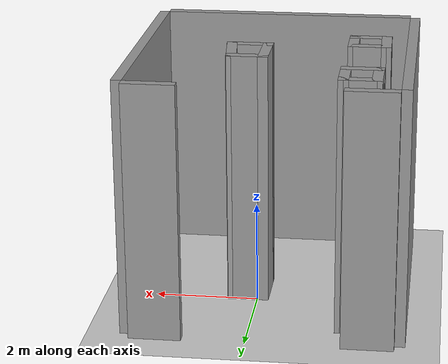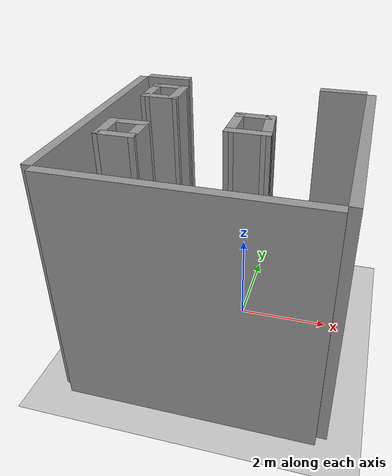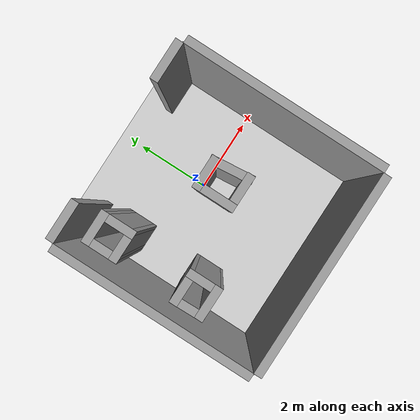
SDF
<sdf version="1.4">
 <world name="default">
  <light name="sun" type="directional">
   <pose>0 0 10 0 -0 0</pose>
   <diffuse>0.8 0.8 0.8 1</diffuse>
   <specular>0.1 0.1 0.1 1</specular>
   <attenuation>
    <range>1000</range>
    <constant>0.9</constant>
    <linear>0.01</linear>
    <quadratic>0.001</quadratic>
   </attenuation>
   <direction>-0.5 0.5 -1</direction>
  </light>
  <model name="my_model_2">
   <pose>2.27296 2.81261 0 0 -0 0</pose>
   <link name="Wall_0">
    <collision name="Wall_0_Collision">
     <geometry><box><size>5 0.2 5</size></box></geometry>
     <pose>0 0 2.5 0 -0 0</pose>
    </collision>
    <visual name="Wall_0_Visual">
     <pose>0 0 2.5 0 -0 0</pose>
     <geometry><box><size>5 0.2 5</size></box></geometry>
     <material>
      <script><uri>file://media/materials/scripts/gazebo.material</uri><name>Gazebo/Grey</name></script>
     </material>
    </visual>
    <velocity_decay><linear>0</linear><angular>0</angular></velocity_decay>
    <pose>-5.165 -3.49 0 0 0 -1.5708</pose>
   </link>
   <link name="Wall_11">
    <collision name="Wall_11_Collision">
     <geometry><box><size>1 0.2 5</size></box></geometry>
     <pose>0 0 2.5 0 -0 0</pose>
    </collision>
    <visual name="Wall_11_Visual">
     <pose>0 0 2.5 0 -0 0</pose>
     <geometry><box><size>1 0.2 5</size></box></geometry>
     <material>
      <script><uri>file://media/materials/scripts/gazebo.material</uri><name>Gazebo/Grey</name></script>
     </material>
    </visual>
    <velocity_decay><linear>0</linear><angular>0</angular></velocity_decay>
    <pose>-4.563 -0.894 0 0 -0 3.14159</pose>
   </link>
   <link name="Wall_13">
    <collision name="Wall_13_Collision">
     <geometry><box><size>1 0.2 5</size></box></geometry>
     <pose>0 0 2.5 0 -0 0</pose>
    </collision>
    <visual name="Wall_13_Visual">
     <pose>0 0 2.5 0 -0 0</pose>
     <geometry><box><size>1 0.2 5</size></box></geometry>
     <material>
      <script><uri>file://media/materials/scripts/gazebo.material</uri><name>Gazebo/Grey</name></script>
     </material>
    </visual>
    <velocity_decay><linear>0</linear><angular>0</angular></velocity_decay>
    <pose>-0.57 -0.903 0 0 -0 3.14159</pose>
   </link>
   <link name="Wall_15">
    <collision name="Wall_15_Collision">
     <geometry><box><size>0.824035 0.2 5</size></box></geometry>
     <pose>0 0 2.5 0 -0 0</pose>
    </collision>
    <visual name="Wall_15_Visual">
     <pose>0 0 2.5 0 -0 0</pose>
     <geometry><box><size>0.824035 0.2 5</size></box></geometry>
     <material>
      <script><uri>file://media/materials/scripts/gazebo.material</uri><name>Gazebo/Grey</name></script>
     </material>
    </visual>
    <velocity_decay><linear>0</linear><angular>0</angular></velocity_decay>
    <pose>-4.34702 -4.40304 0 0 -0 0.000139</pose>
   </link>
   <link name="Wall_16">
    <collision name="Wall_16_Collision">
     <geometry><box><size>0.824 0.2 5</size></box></geometry>
     <pose>0 0 2.5 0 -0 0</pose>
    </collision>
    <visual name="Wall_16_Visual">
     <pose>0 0 2.5 0 -0 0</pose>
     <geometry><box><size>0.824 0.2 5</size></box></geometry>
     <material>
      <script><uri>file://media/materials/scripts/gazebo.material</uri><name>Gazebo/Grey</name></script>
     </material>
    </visual>
    <velocity_decay><linear>0</linear><angular>0</angular></velocity_decay>
    <pose>-4.035 -4.091 0 0 -0 1.5708</pose>
   </link>
   <link name="Wall_17">
    <collision name="Wall_17_Collision">
     <geometry><box><size>0.838903 0.2 5</size></box></geometry>
     <pose>0 0 2.5 0 -0 0</pose>
    </collision>
    <visual name="Wall_17_Visual">
     <pose>0 0 2.5 0 -0 0</pose>
     <geometry><box><size>0.838903 0.2 5</size></box></geometry>
     <material>
      <script><uri>file://media/materials/scripts/gazebo.material</uri><name>Gazebo/Grey</name></script>
     </material>
    </visual>
    <velocity_decay><linear>0</linear><angular>0</angular></velocity_decay>
    <pose>-4.35445 -3.77881 0 0 -0 3.141</pose>
   </link>
   <link name="Wall_18">
    <collision name="Wall_18_Collision">
     <geometry><box><size>0.824639 0.2 5</size></box></geometry>
     <pose>0 0 2.5 0 -0 0</pose>
    </collision>
    <visual name="Wall_18_Visual">
     <pose>0 0 2.5 0 -0 0</pose>
     <geometry><box><size>0.824639 0.2 5</size></box></geometry>
     <material>
      <script><uri>file://media/materials/scripts/gazebo.material</uri><name>Gazebo/Grey</name></script>
     </material>
    </visual>
    <velocity_decay><linear>0</linear><angular>0</angular></velocity_decay>
    <pose>-4.66647 -4.09086 0 0 0 -1.54699</pose>
   </link>
   <link name="Wall_20">
    <collision name="Wall_20_Collision">
     <geometry><box><size>0.809594 0.2 5</size></box></geometry>
     <pose>0 0 2.5 0 -0 0</pose>
    </collision>
    <visual name="Wall_20_Visual">
     <pose>0 0 2.5 0 -0 0</pose>
     <geometry><box><size>0.809594 0.2 5</size></box></geometry>
     <material>
      <script><uri>file://media/materials/scripts/gazebo.material</uri><name>Gazebo/Grey</name></script>
     </material>
    </visual>
    <velocity_decay><linear>0</linear><angular>0</angular></velocity_decay>
    <pose>-2.09428 -2.87167 0 0 -0 3.14159</pose>
   </link>
   <link name="Wall_21">
    <collision name="Wall_21_Collision">
     <geometry><box><size>1.01775 0.2 5</size></box></geometry>
     <pose>0 0 2.5 0 -0 0</pose>
    </collision>
    <visual name="Wall_21_Visual">
     <pose>0 0 2.5 0 -0 0</pose>
     <geometry><box><size>1.01775 0.2 5</size></box></geometry>
     <material>
      <script><uri>file://media/materials/scripts/gazebo.material</uri><name>Gazebo/Grey</name></script>
     </material>
    </visual>
    <velocity_decay><linear>0</linear><angular>0</angular></velocity_decay>
    <pose>-2.39908 -3.28054 0 0 0 -1.5708</pose>
   </link>
   <link name="Wall_22">
    <collision name="Wall_22_Collision">
     <geometry><box><size>0.899077 0.2 5</size></box></geometry>
     <pose>0 0 2.5 0 -0 0</pose>
    </collision>
    <visual name="Wall_22_Visual">
     <pose>0 0 2.5 0 -0 0</pose>
     <geometry><box><size>0.899077 0.2 5</size></box></geometry>
     <material>
      <script><uri>file://media/materials/scripts/gazebo.material</uri><name>Gazebo/Grey</name></script>
     </material>
    </visual>
    <velocity_decay><linear>0</linear><angular>0</angular></velocity_decay>
    <pose>-2.04954 -3.68921 0 0 -0 0.000595</pose>
   </link>
   <link name="Wall_23">
    <collision name="Wall_23_Collision">
     <geometry><box><size>1.02183 0.2 5</size></box></geometry>
     <pose>0 0 2.5 0 -0 0</pose>
    </collision>
    <visual name="Wall_23_Visual">
     <pose>0 0 2.5 0 -0 0</pose>
     <geometry><box><size>1.02183 0.2 5</size></box></geometry>
     <material>
      <script><uri>file://media/materials/scripts/gazebo.material</uri><name>Gazebo/Grey</name></script>
     </material>
    </visual>
    <velocity_decay><linear>0</linear><angular>0</angular></velocity_decay>
    <pose>-1.7445 -3.2805 0 0 -0 1.6793</pose>
   </link>
   <link name="Wall_25">
    <collision name="Wall_25_Collision">
     <geometry><box><size>0.809431 0.2 5</size></box></geometry>
     <pose>0 0 2.5 0 -0 0</pose>
    </collision>
    <visual name="Wall_25_Visual">
     <pose>0 0 2.5 0 -0 0</pose>
     <geometry><box><size>0.809431 0.2 5</size></box></geometry>
     <material>
      <script><uri>file://media/materials/scripts/gazebo.material</uri><name>Gazebo/Grey</name></script>
     </material>
    </visual>
    <velocity_decay><linear>0</linear><angular>0</angular></velocity_decay>
    <pose>-4.30971 -1.5482 0 0 -0 0.000662</pose>
   </link>
   <link name="Wall_26">
    <collision name="Wall_26_Collision">
     <geometry><box><size>0.884 0.2 5</size></box></geometry>
     <pose>0 0 2.5 0 -0 0</pose>
    </collision>
    <visual name="Wall_26_Visual">
     <pose>0 0 2.5 0 -0 0</pose>
     <geometry><box><size>0.884 0.2 5</size></box></geometry>
     <material>
      <script><uri>file://media/materials/scripts/gazebo.material</uri><name>Gazebo/Grey</name></script>
     </material>
    </visual>
    <velocity_decay><linear>0</linear><angular>0</angular></velocity_decay>
    <pose>-4.005 -1.89 0 0 0 -1.5708</pose>
   </link>
   <link name="Wall_27">
    <collision name="Wall_27_Collision">
     <geometry><box><size>0.809431 0.2 5</size></box></geometry>
     <pose>0 0 2.5 0 -0 0</pose>
    </collision>
    <visual name="Wall_27_Visual">
     <pose>0 0 2.5 0 -0 0</pose>
     <geometry><box><size>0.809431 0.2 5</size></box></geometry>
     <material>
      <script><uri>file://media/materials/scripts/gazebo.material</uri><name>Gazebo/Grey</name></script>
     </material>
    </visual>
    <velocity_decay><linear>0</linear><angular>0</angular></velocity_decay>
    <pose>-4.30971 -2.23217 0 0 0 -3.14104</pose>
   </link>
   <link name="Wall_28">
    <collision name="Wall_28_Collision">
     <geometry><box><size>0.883935 0.2 5</size></box></geometry>
     <pose>0 0 2.5 0 -0 0</pose>
    </collision>
    <visual name="Wall_28_Visual">
     <pose>0 0 2.5 0 -0 0</pose>
     <geometry><box><size>0.883935 0.2 5</size></box></geometry>
     <material>
      <script><uri>file://media/materials/scripts/gazebo.material</uri><name>Gazebo/Grey</name></script>
     </material>
    </visual>
    <velocity_decay><linear>0</linear><angular>0</angular></velocity_decay>
    <pose>-4.61443 -1.89037 0 0 -0 1.5708</pose>
   </link>
   <link name="Wall_7">
    <collision name="Wall_7_Collision">
     <geometry><box><size>5 0.2 5</size></box></geometry>
     <pose>0 0 2.5 0 -0 0</pose>
    </collision>
    <visual name="Wall_7_Visual">
     <pose>0 0 2.5 0 -0 0</pose>
     <geometry><box><size>5 0.2 5</size></box></geometry>
     <material>
      <script><uri>file://media/materials/scripts/gazebo.material</uri><name>Gazebo/Grey</name></script>
     </material>
    </visual>
    <velocity_decay><linear>0</linear><angular>0</angular></velocity_decay>
    <pose>-2.569 -6.082 0 0 -0 0</pose>
   </link>
   <link name="Wall_9">
    <collision name="Wall_9_Collision">
     <geometry><box><size>5 0.2 5</size></box></geometry>
     <pose>0 0 2.5 0 -0 0</pose>
    </collision>
    <visual name="Wall_9_Visual">
     <pose>0 0 2.5 0 -0 0</pose>
     <geometry><box><size>5 0.2 5</size></box></geometry>
     <material>
      <script><uri>file://media/materials/scripts/gazebo.material</uri><name>Gazebo/Grey</name></script>
     </material>
    </visual>
    <velocity_decay><linear>0</linear><angular>0</angular></velocity_decay>
    <pose>0.028 -3.497 0 0 0 -1.5708</pose>
   </link>
   <static>1</static>
  </model>
  <model name="ground_plane">
   <static>1</static>
   <link name="link">
    <collision name="collision">
     <geometry><plane><normal>0 0 1</normal><size>100 100</size></plane></geometry>
     <surface><friction><ode><mu>100</mu><mu2>50</mu2></ode></friction></surface>
    </collision>
    <visual name="visual">
     <cast_shadows>0</cast_shadows>
     <geometry><plane><normal>0 0 1</normal><size>100 100</size></plane></geometry>
     <material>
      <script><uri>file://media/materials/scripts/gazebo.material</uri><name>Gazebo/Grey</name></script>
     </material>
    </visual>
    <velocity_decay><linear>0</linear><angular>0</angular></velocity_decay>
   </link>
  </model>
  <physics type="ode">
   <gravity>0 0 -9.8</gravity>
   <real_time_update_rate>1000</real_time_update_rate>
   <max_step_size>0.001</max_step_size>
   <real_time_factor>1</real_time_factor>
  </physics>
  <scene><ambient>0.2 0.2 0.2 1</ambient><background>0.7 0.7 0.7 1</background><shadows>1</shadows></scene>
 </world>
</sdf>
